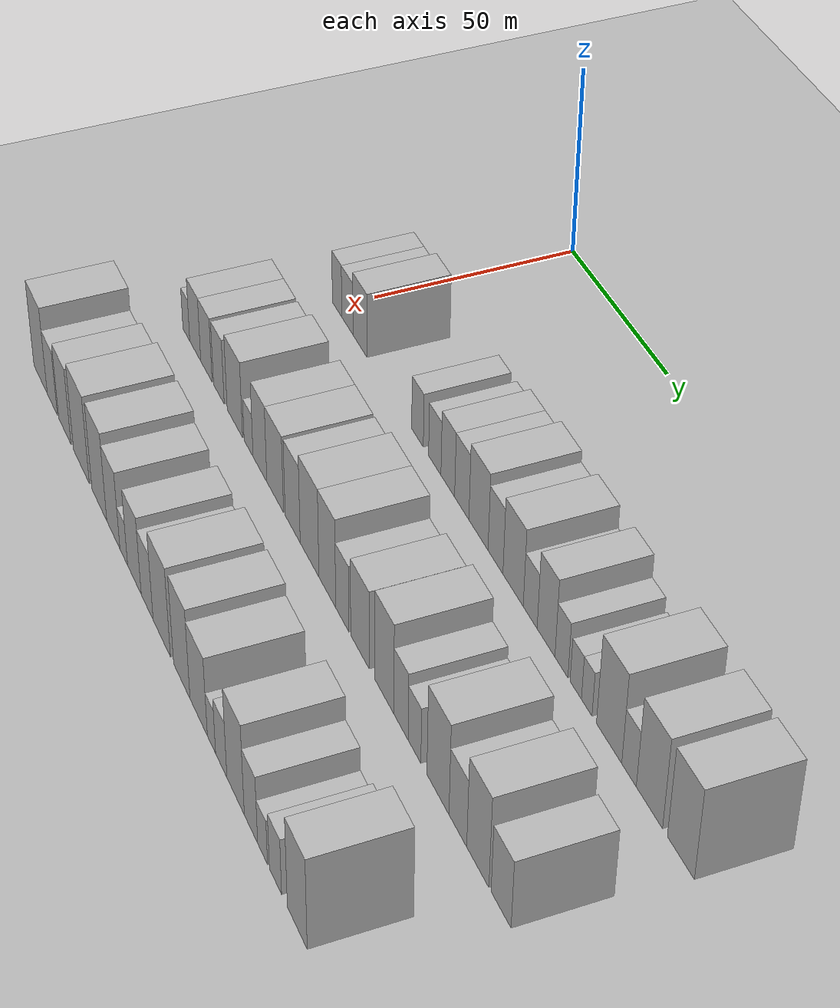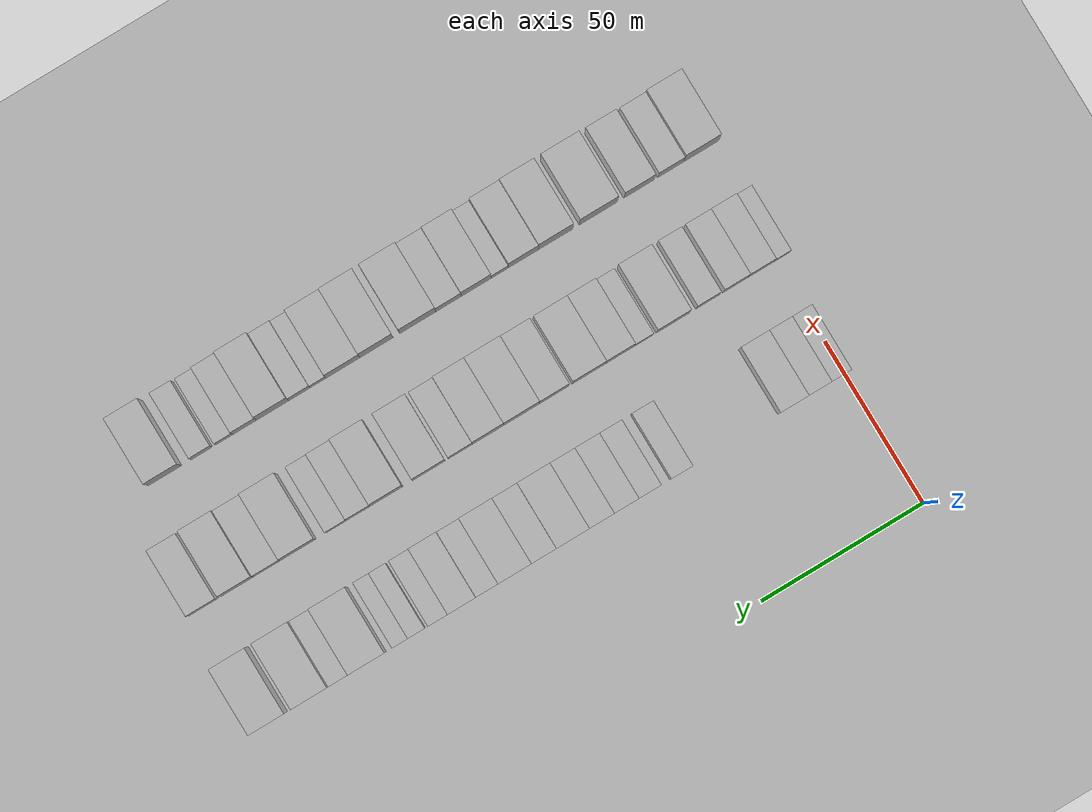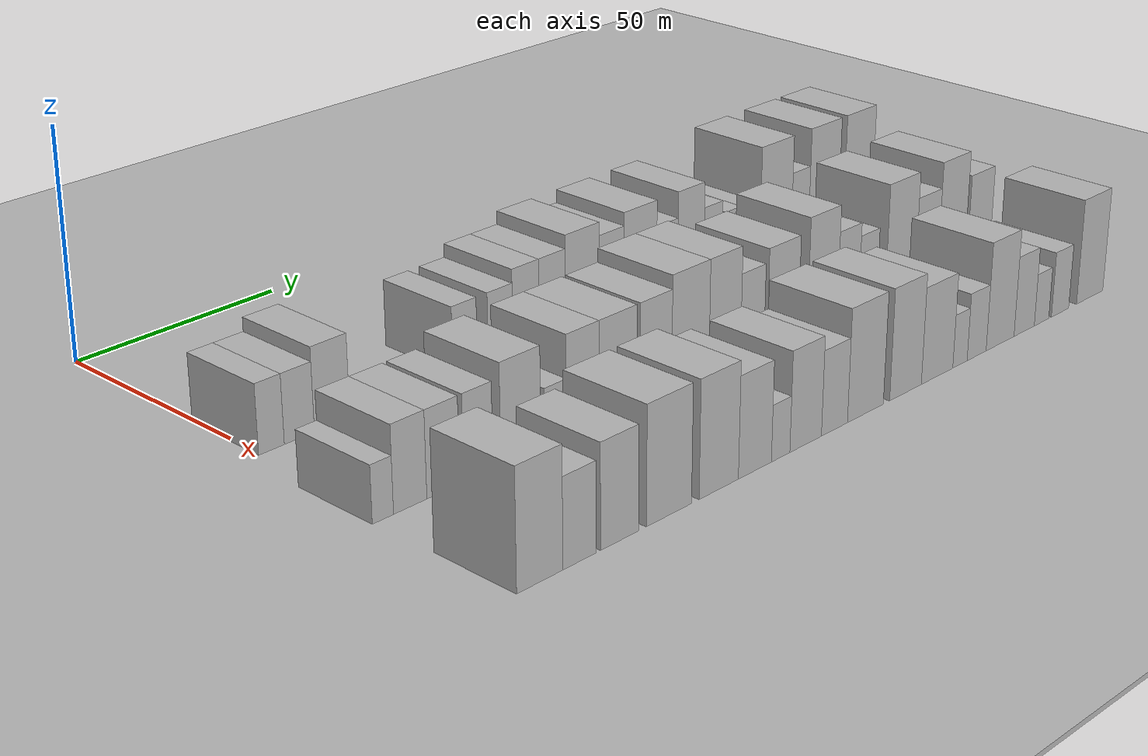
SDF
<sdf version="1.6">
 <world name="default">
  <include><name>ground_plane_1</name><uri>model://HANNAS_ground_plane</uri></include>
  <include>
   <name>ground_plane_2</name>
   <uri>model://HANNAS_ground_plane</uri>
   <pose>100 0 0  0 0 0</pose>
  </include>
  <model name="building_41">
   <static>1</static>
   <pose>50.0000 1.7427 0 0.000000 0.000000 0.000000</pose>
   <link name="link">
    <pose>0 0 7.50 0 0 0</pose>
    <collision name="collision"><geometry><box><size>20.0000 6.0325 15.0000</size></box></geometry></collision>
    <visual name="visual">
     <cast_shadows>0</cast_shadows>
     <geometry><box><size>20.0000 6.0325 15.0000</size></box></geometry>
     <material>
      <script>
       <uri>model://HANNAS_wall/materials/scripts</uri>
       <uri>model://HANNAS_wall/materials/textures</uri>
       <name>vrc/HANNAS_wall</name>
      </script>
     </material>
    </visual>
   </link>
  </model>
  <model name="building_42">
   <static>1</static>
   <pose>50.0000 8.3650 0 0.000000 0.000000 0.000000</pose>
   <link name="link">
    <pose>0 0 7.50 0 0 0</pose>
    <collision name="collision"><geometry><box><size>20.0000 7.2120 15.0000</size></box></geometry></collision>
    <visual name="visual">
     <cast_shadows>0</cast_shadows>
     <geometry><box><size>20.0000 7.2120 15.0000</size></box></geometry>
     <material>
      <script>
       <uri>model://HANNAS_wall/materials/scripts</uri>
       <uri>model://HANNAS_wall/materials/textures</uri>
       <name>vrc/HANNAS_wall</name>
      </script>
     </material>
    </visual>
   </link>
  </model>
  <model name="building_43">
   <static>1</static>
   <pose>50.0000 16.3239 0 0.000000 0.000000 0.000000</pose>
   <link name="link">
    <pose>0 0 9.00 0 0 0</pose>
    <collision name="collision"><geometry><box><size>20.0000 8.7058 18.0000</size></box></geometry></collision>
    <visual name="visual">
     <cast_shadows>0</cast_shadows>
     <geometry><box><size>20.0000 8.7058 18.0000</size></box></geometry>
     <material>
      <script>
       <uri>model://HANNAS_wall/materials/scripts</uri>
       <uri>model://HANNAS_wall/materials/textures</uri>
       <name>vrc/HANNAS_wall</name>
      </script>
     </material>
    </visual>
   </link>
  </model>
  <model name="building_44">
   <static>1</static>
   <pose>50.0000 50.6736 0 0.000000 0.000000 0.000000</pose>
   <link name="link">
    <pose>0 0 7.50 0 0 0</pose>
    <collision name="collision"><geometry><box><size>20.0000 6.6645 15.0000</size></box></geometry></collision>
    <visual name="visual">
     <cast_shadows>0</cast_shadows>
     <geometry><box><size>20.0000 6.6645 15.0000</size></box></geometry>
     <material>
      <script>
       <uri>model://HANNAS_wall/materials/scripts</uri>
       <uri>model://HANNAS_wall/materials/textures</uri>
       <name>vrc/HANNAS_wall</name>
      </script>
     </material>
    </visual>
   </link>
  </model>
  <model name="building_45">
   <static>1</static>
   <pose>50.0000 60.4581 0 0.000000 0.000000 0.000000</pose>
   <link name="link">
    <pose>0 0 7.50 0 0 0</pose>
    <collision name="collision"><geometry><box><size>20.0000 6.9047 15.0000</size></box></geometry></collision>
    <visual name="visual">
     <cast_shadows>0</cast_shadows>
     <geometry><box><size>20.0000 6.9047 15.0000</size></box></geometry>
     <material>
      <script>
       <uri>model://HANNAS_wall/materials/scripts</uri>
       <uri>model://HANNAS_wall/materials/textures</uri>
       <name>vrc/HANNAS_wall</name>
      </script>
     </material>
    </visual>
   </link>
  </model>
  <model name="building_46">
   <static>1</static>
   <pose>50.0000 67.6702 0 0.000000 0.000000 0.000000</pose>
   <link name="link">
    <pose>0 0 9.00 0 0 0</pose>
    <collision name="collision"><geometry><box><size>20.0000 7.5195 18.0000</size></box></geometry></collision>
    <visual name="visual">
     <cast_shadows>0</cast_shadows>
     <geometry><box><size>20.0000 7.5195 18.0000</size></box></geometry>
     <material>
      <script>
       <uri>model://HANNAS_wall/materials/scripts</uri>
       <uri>model://HANNAS_wall/materials/textures</uri>
       <name>vrc/HANNAS_wall</name>
      </script>
     </material>
    </visual>
   </link>
  </model>
  <model name="building_47">
   <static>1</static>
   <pose>50.0000 75.2635 0 0.000000 0.000000 0.000000</pose>
   <link name="link">
    <pose>0 0 9.00 0 0 0</pose>
    <collision name="collision"><geometry><box><size>20.0000 7.6672 18.0000</size></box></geometry></collision>
    <visual name="visual">
     <cast_shadows>0</cast_shadows>
     <geometry><box><size>20.0000 7.6672 18.0000</size></box></geometry>
     <material>
      <script>
       <uri>model://HANNAS_wall/materials/scripts</uri>
       <uri>model://HANNAS_wall/materials/textures</uri>
       <name>vrc/HANNAS_wall</name>
      </script>
     </material>
    </visual>
   </link>
  </model>
  <model name="building_48">
   <static>1</static>
   <pose>50.0000 84.1313 0 0.000000 0.000000 0.000000</pose>
   <link name="link">
    <pose>0 0 10.50 0 0 0</pose>
    <collision name="collision"><geometry><box><size>20.0000 10.0684 21.0000</size></box></geometry></collision>
    <visual name="visual">
     <cast_shadows>0</cast_shadows>
     <geometry><box><size>20.0000 10.0684 21.0000</size></box></geometry>
     <material>
      <script>
       <uri>model://HANNAS_wall/materials/scripts</uri>
       <uri>model://HANNAS_wall/materials/textures</uri>
       <name>vrc/HANNAS_wall</name>
      </script>
     </material>
    </visual>
   </link>
  </model>
  <model name="building_49">
   <static>1</static>
   <pose>50.0000 92.9879 0 0.000000 0.000000 0.000000</pose>
   <link name="link">
    <pose>0 0 9.00 0 0 0</pose>
    <collision name="collision"><geometry><box><size>20.0000 7.6447 18.0000</size></box></geometry></collision>
    <visual name="visual">
     <cast_shadows>0</cast_shadows>
     <geometry><box><size>20.0000 7.6447 18.0000</size></box></geometry>
     <material>
      <script>
       <uri>model://HANNAS_wall/materials/scripts</uri>
       <uri>model://HANNAS_wall/materials/textures</uri>
       <name>vrc/HANNAS_wall</name>
      </script>
     </material>
    </visual>
   </link>
  </model>
  <model name="building_50">
   <static>1</static>
   <pose>50.0000 101.9029 0 0.000000 0.000000 0.000000</pose>
   <link name="link">
    <pose>0 0 10.50 0 0 0</pose>
    <collision name="collision"><geometry><box><size>20.0000 10.1852 21.0000</size></box></geometry></collision>
    <visual name="visual">
     <cast_shadows>0</cast_shadows>
     <geometry><box><size>20.0000 10.1852 21.0000</size></box></geometry>
     <material>
      <script>
       <uri>model://HANNAS_wall/materials/scripts</uri>
       <uri>model://HANNAS_wall/materials/textures</uri>
       <name>vrc/HANNAS_wall</name>
      </script>
     </material>
    </visual>
   </link>
  </model>
  <model name="building_51">
   <static>1</static>
   <pose>50.0000 110.4043 0 0.000000 0.000000 0.000000</pose>
   <link name="link">
    <pose>0 0 7.50 0 0 0</pose>
    <collision name="collision"><geometry><box><size>20.0000 6.8177 15.0000</size></box></geometry></collision>
    <visual name="visual">
     <cast_shadows>0</cast_shadows>
     <geometry><box><size>20.0000 6.8177 15.0000</size></box></geometry>
     <material>
      <script>
       <uri>model://HANNAS_wall/materials/scripts</uri>
       <uri>model://HANNAS_wall/materials/textures</uri>
       <name>vrc/HANNAS_wall</name>
      </script>
     </material>
    </visual>
   </link>
  </model>
  <model name="building_52">
   <static>1</static>
   <pose>50.0000 118.0858 0 0.000000 0.000000 0.000000</pose>
   <link name="link">
    <pose>0 0 10.50 0 0 0</pose>
    <collision name="collision"><geometry><box><size>20.0000 8.5454 21.0000</size></box></geometry></collision>
    <visual name="visual">
     <cast_shadows>0</cast_shadows>
     <geometry><box><size>20.0000 8.5454 21.0000</size></box></geometry>
     <material>
      <script>
       <uri>model://HANNAS_wall/materials/scripts</uri>
       <uri>model://HANNAS_wall/materials/textures</uri>
       <name>vrc/HANNAS_wall</name>
      </script>
     </material>
    </visual>
   </link>
  </model>
  <model name="building_53">
   <static>1</static>
   <pose>50.0000 125.4102 0 0.000000 0.000000 0.000000</pose>
   <link name="link">
    <pose>0 0 7.50 0 0 0</pose>
    <collision name="collision"><geometry><box><size>20.0000 6.1034 15.0000</size></box></geometry></collision>
    <visual name="visual">
     <cast_shadows>0</cast_shadows>
     <geometry><box><size>20.0000 6.1034 15.0000</size></box></geometry>
     <material>
      <script>
       <uri>model://HANNAS_wall/materials/scripts</uri>
       <uri>model://HANNAS_wall/materials/textures</uri>
       <name>vrc/HANNAS_wall</name>
      </script>
     </material>
    </visual>
   </link>
  </model>
  <model name="building_54">
   <static>1</static>
   <pose>50.0000 132.0772 0 0.000000 0.000000 0.000000</pose>
   <link name="link">
    <pose>0 0 6.00 0 0 0</pose>
    <collision name="collision"><geometry><box><size>20.0000 5.2305 12.0000</size></box></geometry></collision>
    <visual name="visual">
     <cast_shadows>0</cast_shadows>
     <geometry><box><size>20.0000 5.2305 12.0000</size></box></geometry>
     <material>
      <script>
       <uri>model://HANNAS_wall/materials/scripts</uri>
       <uri>model://HANNAS_wall/materials/textures</uri>
       <name>vrc/HANNAS_wall</name>
      </script>
     </material>
    </visual>
   </link>
  </model>
  <model name="building_55">
   <static>1</static>
   <pose>50.0000 137.1034 0 0.000000 0.000000 0.000000</pose>
   <link name="link">
    <pose>0 0 6.00 0 0 0</pose>
    <collision name="collision"><geometry><box><size>20.0000 4.8220 12.0000</size></box></geometry></collision>
    <visual name="visual">
     <cast_shadows>0</cast_shadows>
     <geometry><box><size>20.0000 4.8220 12.0000</size></box></geometry>
     <material>
      <script>
       <uri>model://HANNAS_wall/materials/scripts</uri>
       <uri>model://HANNAS_wall/materials/textures</uri>
       <name>vrc/HANNAS_wall</name>
      </script>
     </material>
    </visual>
   </link>
  </model>
  <model name="building_56">
   <static>1</static>
   <pose>50.0000 147.1012 0 0.000000 0.000000 0.000000</pose>
   <link name="link">
    <pose>0 0 12.00 0 0 0</pose>
    <collision name="collision"><geometry><box><size>20.0000 11.1736 24.0000</size></box></geometry></collision>
    <visual name="visual">
     <cast_shadows>0</cast_shadows>
     <geometry><box><size>20.0000 11.1736 24.0000</size></box></geometry>
     <material>
      <script>
       <uri>model://HANNAS_wall/materials/scripts</uri>
       <uri>model://HANNAS_wall/materials/textures</uri>
       <name>vrc/HANNAS_wall</name>
      </script>
     </material>
    </visual>
   </link>
  </model>
  <model name="building_57">
   <static>1</static>
   <pose>50.0000 155.8276 0 0.000000 0.000000 0.000000</pose>
   <link name="link">
    <pose>0 0 7.50 0 0 0</pose>
    <collision name="collision"><geometry><box><size>20.0000 6.2790 15.0000</size></box></geometry></collision>
    <visual name="visual">
     <cast_shadows>0</cast_shadows>
     <geometry><box><size>20.0000 6.2790 15.0000</size></box></geometry>
     <material>
      <script>
       <uri>model://HANNAS_wall/materials/scripts</uri>
       <uri>model://HANNAS_wall/materials/textures</uri>
       <name>vrc/HANNAS_wall</name>
      </script>
     </material>
    </visual>
   </link>
  </model>
  <model name="building_58">
   <static>1</static>
   <pose>50.0000 164.4789 0 0.000000 0.000000 0.000000</pose>
   <link name="link">
    <pose>0 0 12.00 0 0 0</pose>
    <collision name="collision"><geometry><box><size>20.0000 11.0237 24.0000</size></box></geometry></collision>
    <visual name="visual">
     <cast_shadows>0</cast_shadows>
     <geometry><box><size>20.0000 11.0237 24.0000</size></box></geometry>
     <material>
      <script>
       <uri>model://HANNAS_wall/materials/scripts</uri>
       <uri>model://HANNAS_wall/materials/textures</uri>
       <name>vrc/HANNAS_wall</name>
      </script>
     </material>
    </visual>
   </link>
  </model>
  <model name="building_59">
   <static>1</static>
   <pose>50.0000 177.4538 0 0.000000 0.000000 0.000000</pose>
   <link name="link">
    <pose>0 0 12.00 0 0 0</pose>
    <collision name="collision"><geometry><box><size>20.0000 10.9261 24.0000</size></box></geometry></collision>
    <visual name="visual">
     <cast_shadows>0</cast_shadows>
     <geometry><box><size>20.0000 10.9261 24.0000</size></box></geometry>
     <material>
      <script>
       <uri>model://HANNAS_wall/materials/scripts</uri>
       <uri>model://HANNAS_wall/materials/textures</uri>
       <name>vrc/HANNAS_wall</name>
      </script>
     </material>
    </visual>
   </link>
  </model>
  <model name="building_119">
   <static>1</static>
   <pose>85.0000 -1.7467 0 0.000000 0.000000 0.000000</pose>
   <link name="link">
    <pose>0 0 6.00 0 0 0</pose>
    <collision name="collision"><geometry><box><size>20.0000 4.8952 12.0000</size></box></geometry></collision>
    <visual name="visual">
     <cast_shadows>0</cast_shadows>
     <geometry><box><size>20.0000 4.8952 12.0000</size></box></geometry>
     <material>
      <script>
       <uri>model://HANNAS_wall/materials/scripts</uri>
       <uri>model://HANNAS_wall/materials/textures</uri>
       <name>vrc/HANNAS_wall</name>
      </script>
     </material>
    </visual>
   </link>
  </model>
  <model name="building_120">
   <static>1</static>
   <pose>85.0000 4.6228 0 0.000000 0.000000 0.000000</pose>
   <link name="link">
    <pose>0 0 9.00 0 0 0</pose>
    <collision name="collision"><geometry><box><size>20.0000 7.8437 18.0000</size></box></geometry></collision>
    <visual name="visual">
     <cast_shadows>0</cast_shadows>
     <geometry><box><size>20.0000 7.8437 18.0000</size></box></geometry>
     <material>
      <script>
       <uri>model://HANNAS_wall/materials/scripts</uri>
       <uri>model://HANNAS_wall/materials/textures</uri>
       <name>vrc/HANNAS_wall</name>
      </script>
     </material>
    </visual>
   </link>
  </model>
  <model name="building_121">
   <static>1</static>
   <pose>85.0000 12.5078 0 0.000000 0.000000 0.000000</pose>
   <link name="link">
    <pose>0 0 9.00 0 0 0</pose>
    <collision name="collision"><geometry><box><size>20.0000 7.9263 18.0000</size></box></geometry></collision>
    <visual name="visual">
     <cast_shadows>0</cast_shadows>
     <geometry><box><size>20.0000 7.9263 18.0000</size></box></geometry>
     <material>
      <script>
       <uri>model://HANNAS_wall/materials/scripts</uri>
       <uri>model://HANNAS_wall/materials/textures</uri>
       <name>vrc/HANNAS_wall</name>
      </script>
     </material>
    </visual>
   </link>
  </model>
  <model name="building_122">
   <static>1</static>
   <pose>85.0000 21.1049 0 0.000000 0.000000 0.000000</pose>
   <link name="link">
    <pose>0 0 9.00 0 0 0</pose>
    <collision name="collision"><geometry><box><size>20.0000 7.2680 18.0000</size></box></geometry></collision>
    <visual name="visual">
     <cast_shadows>0</cast_shadows>
     <geometry><box><size>20.0000 7.2680 18.0000</size></box></geometry>
     <material>
      <script>
       <uri>model://HANNAS_wall/materials/scripts</uri>
       <uri>model://HANNAS_wall/materials/textures</uri>
       <name>vrc/HANNAS_wall</name>
      </script>
     </material>
    </visual>
   </link>
  </model>
  <model name="building_123">
   <static>1</static>
   <pose>85.0000 31.8731 0 0.000000 0.000000 0.000000</pose>
   <link name="link">
    <pose>0 0 10.50 0 0 0</pose>
    <collision name="collision"><geometry><box><size>20.0000 10.2685 21.0000</size></box></geometry></collision>
    <visual name="visual">
     <cast_shadows>0</cast_shadows>
     <geometry><box><size>20.0000 10.2685 21.0000</size></box></geometry>
     <material>
      <script>
       <uri>model://HANNAS_wall/materials/scripts</uri>
       <uri>model://HANNAS_wall/materials/textures</uri>
       <name>vrc/HANNAS_wall</name>
      </script>
     </material>
    </visual>
   </link>
  </model>
  <model name="building_124">
   <static>1</static>
   <pose>85.0000 40.9102 0 0.000000 0.000000 0.000000</pose>
   <link name="link">
    <pose>0 0 6.00 0 0 0</pose>
    <collision name="collision"><geometry><box><size>20.0000 5.8057 12.0000</size></box></geometry></collision>
    <visual name="visual">
     <cast_shadows>0</cast_shadows>
     <geometry><box><size>20.0000 5.8057 12.0000</size></box></geometry>
     <material>
      <script>
       <uri>model://HANNAS_wall/materials/scripts</uri>
       <uri>model://HANNAS_wall/materials/textures</uri>
       <name>vrc/HANNAS_wall</name>
      </script>
     </material>
    </visual>
   </link>
  </model>
  <model name="building_125">
   <static>1</static>
   <pose>85.0000 48.2095 0 0.000000 0.000000 0.000000</pose>
   <link name="link">
    <pose>0 0 10.50 0 0 0</pose>
    <collision name="collision"><geometry><box><size>20.0000 8.7928 21.0000</size></box></geometry></collision>
    <visual name="visual">
     <cast_shadows>0</cast_shadows>
     <geometry><box><size>20.0000 8.7928 21.0000</size></box></geometry>
     <material>
      <script>
       <uri>model://HANNAS_wall/materials/scripts</uri>
       <uri>model://HANNAS_wall/materials/textures</uri>
       <name>vrc/HANNAS_wall</name>
      </script>
     </material>
    </visual>
   </link>
  </model>
  <model name="building_126">
   <static>1</static>
   <pose>85.0000 57.8054 0 0.000000 0.000000 0.000000</pose>
   <link name="link">
    <pose>0 0 10.50 0 0 0</pose>
    <collision name="collision"><geometry><box><size>20.0000 10.3990 21.0000</size></box></geometry></collision>
    <visual name="visual">
     <cast_shadows>0</cast_shadows>
     <geometry><box><size>20.0000 10.3990 21.0000</size></box></geometry>
     <material>
      <script>
       <uri>model://HANNAS_wall/materials/scripts</uri>
       <uri>model://HANNAS_wall/materials/textures</uri>
       <name>vrc/HANNAS_wall</name>
      </script>
     </material>
    </visual>
   </link>
  </model>
  <model name="building_127">
   <static>1</static>
   <pose>85.0000 68.5514 0 0.000000 0.000000 0.000000</pose>
   <link name="link">
    <pose>0 0 10.50 0 0 0</pose>
    <collision name="collision"><geometry><box><size>20.0000 9.0930 21.0000</size></box></geometry></collision>
    <visual name="visual">
     <cast_shadows>0</cast_shadows>
     <geometry><box><size>20.0000 9.0930 21.0000</size></box></geometry>
     <material>
      <script>
       <uri>model://HANNAS_wall/materials/scripts</uri>
       <uri>model://HANNAS_wall/materials/textures</uri>
       <name>vrc/HANNAS_wall</name>
      </script>
     </material>
    </visual>
   </link>
  </model>
  <model name="building_128">
   <static>1</static>
   <pose>85.0000 78.6218 0 0.000000 0.000000 0.000000</pose>
   <link name="link">
    <pose>0 0 12.00 0 0 0</pose>
    <collision name="collision"><geometry><box><size>20.0000 11.0478 24.0000</size></box></geometry></collision>
    <visual name="visual">
     <cast_shadows>0</cast_shadows>
     <geometry><box><size>20.0000 11.0478 24.0000</size></box></geometry>
     <material>
      <script>
       <uri>model://HANNAS_wall/materials/scripts</uri>
       <uri>model://HANNAS_wall/materials/textures</uri>
       <name>vrc/HANNAS_wall</name>
      </script>
     </material>
    </visual>
   </link>
  </model>
  <model name="building_129">
   <static>1</static>
   <pose>85.0000 88.9716 0 0.000000 0.000000 0.000000</pose>
   <link name="link">
    <pose>0 0 12.00 0 0 0</pose>
    <collision name="collision"><geometry><box><size>20.0000 9.6520 24.0000</size></box></geometry></collision>
    <visual name="visual">
     <cast_shadows>0</cast_shadows>
     <geometry><box><size>20.0000 9.6520 24.0000</size></box></geometry>
     <material>
      <script>
       <uri>model://HANNAS_wall/materials/scripts</uri>
       <uri>model://HANNAS_wall/materials/textures</uri>
       <name>vrc/HANNAS_wall</name>
      </script>
     </material>
    </visual>
   </link>
  </model>
  <model name="building_130">
   <static>1</static>
   <pose>85.0000 97.4891 0 0.000000 0.000000 0.000000</pose>
   <link name="link">
    <pose>0 0 9.00 0 0 0</pose>
    <collision name="collision"><geometry><box><size>20.0000 7.3828 18.0000</size></box></geometry></collision>
    <visual name="visual">
     <cast_shadows>0</cast_shadows>
     <geometry><box><size>20.0000 7.3828 18.0000</size></box></geometry>
     <material>
      <script>
       <uri>model://HANNAS_wall/materials/scripts</uri>
       <uri>model://HANNAS_wall/materials/textures</uri>
       <name>vrc/HANNAS_wall</name>
      </script>
     </material>
    </visual>
   </link>
  </model>
  <model name="building_131">
   <static>1</static>
   <pose>85.0000 107.1937 0 0.000000 0.000000 0.000000</pose>
   <link name="link">
    <pose>0 0 10.50 0 0 0</pose>
    <collision name="collision"><geometry><box><size>20.0000 10.0264 21.0000</size></box></geometry></collision>
    <visual name="visual">
     <cast_shadows>0</cast_shadows>
     <geometry><box><size>20.0000 10.0264 21.0000</size></box></geometry>
     <material>
      <script>
       <uri>model://HANNAS_wall/materials/scripts</uri>
       <uri>model://HANNAS_wall/materials/textures</uri>
       <name>vrc/HANNAS_wall</name>
      </script>
     </material>
    </visual>
   </link>
  </model>
  <model name="building_132">
   <static>1</static>
   <pose>85.0000 120.2014 0 0.000000 0.000000 0.000000</pose>
   <link name="link">
    <pose>0 0 12.00 0 0 0</pose>
    <collision name="collision"><geometry><box><size>20.0000 9.9890 24.0000</size></box></geometry></collision>
    <visual name="visual">
     <cast_shadows>0</cast_shadows>
     <geometry><box><size>20.0000 9.9890 24.0000</size></box></geometry>
     <material>
      <script>
       <uri>model://HANNAS_wall/materials/scripts</uri>
       <uri>model://HANNAS_wall/materials/textures</uri>
       <name>vrc/HANNAS_wall</name>
      </script>
     </material>
    </visual>
   </link>
  </model>
  <model name="building_133">
   <static>1</static>
   <pose>85.0000 128.8684 0 0.000000 0.000000 0.000000</pose>
   <link name="link">
    <pose>0 0 9.00 0 0 0</pose>
    <collision name="collision"><geometry><box><size>20.0000 7.3451 18.0000</size></box></geometry></collision>
    <visual name="visual">
     <cast_shadows>0</cast_shadows>
     <geometry><box><size>20.0000 7.3451 18.0000</size></box></geometry>
     <material>
      <script>
       <uri>model://HANNAS_wall/materials/scripts</uri>
       <uri>model://HANNAS_wall/materials/textures</uri>
       <name>vrc/HANNAS_wall</name>
      </script>
     </material>
    </visual>
   </link>
  </model>
  <model name="building_134">
   <static>1</static>
   <pose>85.0000 135.7424 0 0.000000 0.000000 0.000000</pose>
   <link name="link">
    <pose>0 0 7.50 0 0 0</pose>
    <collision name="collision"><geometry><box><size>20.0000 6.4028 15.0000</size></box></geometry></collision>
    <visual name="visual">
     <cast_shadows>0</cast_shadows>
     <geometry><box><size>20.0000 6.4028 15.0000</size></box></geometry>
     <material>
      <script>
       <uri>model://HANNAS_wall/materials/scripts</uri>
       <uri>model://HANNAS_wall/materials/textures</uri>
       <name>vrc/HANNAS_wall</name>
      </script>
     </material>
    </visual>
   </link>
  </model>
  <model name="building_135">
   <static>1</static>
   <pose>85.0000 147.3098 0 0.000000 0.000000 0.000000</pose>
   <link name="link">
    <pose>0 0 12.00 0 0 0</pose>
    <collision name="collision"><geometry><box><size>20.0000 10.7319 24.0000</size></box></geometry></collision>
    <visual name="visual">
     <cast_shadows>0</cast_shadows>
     <geometry><box><size>20.0000 10.7319 24.0000</size></box></geometry>
     <material>
      <script>
       <uri>model://HANNAS_wall/materials/scripts</uri>
       <uri>model://HANNAS_wall/materials/textures</uri>
       <name>vrc/HANNAS_wall</name>
      </script>
     </material>
    </visual>
   </link>
  </model>
  <model name="building_136">
   <static>1</static>
   <pose>85.0000 156.8674 0 0.000000 0.000000 0.000000</pose>
   <link name="link">
    <pose>0 0 9.00 0 0 0</pose>
    <collision name="collision"><geometry><box><size>20.0000 8.3833 18.0000</size></box></geometry></collision>
    <visual name="visual">
     <cast_shadows>0</cast_shadows>
     <geometry><box><size>20.0000 8.3833 18.0000</size></box></geometry>
     <material>
      <script>
       <uri>model://HANNAS_wall/materials/scripts</uri>
       <uri>model://HANNAS_wall/materials/textures</uri>
       <name>vrc/HANNAS_wall</name>
      </script>
     </material>
    </visual>
   </link>
  </model>
  <model name="building_137">
   <static>1</static>
   <pose>85.0000 166.1545 0 0.000000 0.000000 0.000000</pose>
   <link name="link">
    <pose>0 0 12.00 0 0 0</pose>
    <collision name="collision"><geometry><box><size>20.0000 10.1909 24.0000</size></box></geometry></collision>
    <visual name="visual">
     <cast_shadows>0</cast_shadows>
     <geometry><box><size>20.0000 10.1909 24.0000</size></box></geometry>
     <material>
      <script>
       <uri>model://HANNAS_wall/materials/scripts</uri>
       <uri>model://HANNAS_wall/materials/textures</uri>
       <name>vrc/HANNAS_wall</name>
      </script>
     </material>
    </visual>
   </link>
  </model>
  <model name="building_138">
   <static>1</static>
   <pose>85.0000 176.7057 0 0.000000 0.000000 0.000000</pose>
   <link name="link">
    <pose>0 0 9.00 0 0 0</pose>
    <collision name="collision"><geometry><box><size>20.0000 8.9116 18.0000</size></box></geometry></collision>
    <visual name="visual">
     <cast_shadows>0</cast_shadows>
     <geometry><box><size>20.0000 8.9116 18.0000</size></box></geometry>
     <material>
      <script>
       <uri>model://HANNAS_wall/materials/scripts</uri>
       <uri>model://HANNAS_wall/materials/textures</uri>
       <name>vrc/HANNAS_wall</name>
      </script>
     </material>
    </visual>
   </link>
  </model>
  <model name="building_193">
   <static>1</static>
   <pose>120.0000 1.8938 0 0.000000 0.000000 0.000000</pose>
   <link name="link">
    <pose>0 0 12.00 0 0 0</pose>
    <collision name="collision"><geometry><box><size>20.0000 10.7951 24.0000</size></box></geometry></collision>
    <visual name="visual">
     <cast_shadows>0</cast_shadows>
     <geometry><box><size>20.0000 10.7951 24.0000</size></box></geometry>
     <material>
      <script>
       <uri>model://HANNAS_wall/materials/scripts</uri>
       <uri>model://HANNAS_wall/materials/textures</uri>
       <name>vrc/HANNAS_wall</name>
      </script>
     </material>
    </visual>
   </link>
  </model>
  <model name="building_194">
   <static>1</static>
   <pose>120.0000 11.3178 0 0.000000 0.000000 0.000000</pose>
   <link name="link">
    <pose>0 0 9.00 0 0 0</pose>
    <collision name="collision"><geometry><box><size>20.0000 8.0530 18.0000</size></box></geometry></collision>
    <visual name="visual">
     <cast_shadows>0</cast_shadows>
     <geometry><box><size>20.0000 8.0530 18.0000</size></box></geometry>
     <material>
      <script>
       <uri>model://HANNAS_wall/materials/scripts</uri>
       <uri>model://HANNAS_wall/materials/textures</uri>
       <name>vrc/HANNAS_wall</name>
      </script>
     </material>
    </visual>
   </link>
  </model>
  <model name="building_195">
   <static>1</static>
   <pose>120.0000 21.0740 0 0.000000 0.000000 0.000000</pose>
   <link name="link">
    <pose>0 0 10.50 0 0 0</pose>
    <collision name="collision"><geometry><box><size>20.0000 9.4592 21.0000</size></box></geometry></collision>
    <visual name="visual">
     <cast_shadows>0</cast_shadows>
     <geometry><box><size>20.0000 9.4592 21.0000</size></box></geometry>
     <material>
      <script>
       <uri>model://HANNAS_wall/materials/scripts</uri>
       <uri>model://HANNAS_wall/materials/textures</uri>
       <name>vrc/HANNAS_wall</name>
      </script>
     </material>
    </visual>
   </link>
  </model>
  <model name="building_196">
   <static>1</static>
   <pose>120.0000 33.6798 0 0.000000 0.000000 0.000000</pose>
   <link name="link">
    <pose>0 0 12.00 0 0 0</pose>
    <collision name="collision"><geometry><box><size>20.0000 11.7524 24.0000</size></box></geometry></collision>
    <visual name="visual">
     <cast_shadows>0</cast_shadows>
     <geometry><box><size>20.0000 11.7524 24.0000</size></box></geometry>
     <material>
      <script>
       <uri>model://HANNAS_wall/materials/scripts</uri>
       <uri>model://HANNAS_wall/materials/textures</uri>
       <name>vrc/HANNAS_wall</name>
      </script>
     </material>
    </visual>
   </link>
  </model>
  <model name="building_197">
   <static>1</static>
   <pose>120.0000 46.8922 0 0.000000 0.000000 0.000000</pose>
   <link name="link">
    <pose>0 0 12.00 0 0 0</pose>
    <collision name="collision"><geometry><box><size>20.0000 10.6726 24.0000</size></box></geometry></collision>
    <visual name="visual">
     <cast_shadows>0</cast_shadows>
     <geometry><box><size>20.0000 10.6726 24.0000</size></box></geometry>
     <material>
      <script>
       <uri>model://HANNAS_wall/materials/scripts</uri>
       <uri>model://HANNAS_wall/materials/textures</uri>
       <name>vrc/HANNAS_wall</name>
      </script>
     </material>
    </visual>
   </link>
  </model>
  <model name="building_198">
   <static>1</static>
   <pose>120.0000 56.8577 0 0.000000 0.000000 0.000000</pose>
   <link name="link">
    <pose>0 0 10.50 0 0 0</pose>
    <collision name="collision"><geometry><box><size>20.0000 9.2584 21.0000</size></box></geometry></collision>
    <visual name="visual">
     <cast_shadows>0</cast_shadows>
     <geometry><box><size>20.0000 9.2584 21.0000</size></box></geometry>
     <material>
      <script>
       <uri>model://HANNAS_wall/materials/scripts</uri>
       <uri>model://HANNAS_wall/materials/textures</uri>
       <name>vrc/HANNAS_wall</name>
      </script>
     </material>
    </visual>
   </link>
  </model>
  <model name="building_199">
   <static>1</static>
   <pose>120.0000 64.1374 0 0.000000 0.000000 0.000000</pose>
   <link name="link">
    <pose>0 0 6.00 0 0 0</pose>
    <collision name="collision"><geometry><box><size>20.0000 5.3009 12.0000</size></box></geometry></collision>
    <visual name="visual">
     <cast_shadows>0</cast_shadows>
     <geometry><box><size>20.0000 5.3009 12.0000</size></box></geometry>
     <material>
      <script>
       <uri>model://HANNAS_wall/materials/scripts</uri>
       <uri>model://HANNAS_wall/materials/textures</uri>
       <name>vrc/HANNAS_wall</name>
      </script>
     </material>
    </visual>
   </link>
  </model>
  <model name="building_200">
   <static>1</static>
   <pose>120.0000 71.4222 0 0.000000 0.000000 0.000000</pose>
   <link name="link">
    <pose>0 0 10.50 0 0 0</pose>
    <collision name="collision"><geometry><box><size>20.0000 9.2686 21.0000</size></box></geometry></collision>
    <visual name="visual">
     <cast_shadows>0</cast_shadows>
     <geometry><box><size>20.0000 9.2686 21.0000</size></box></geometry>
     <material>
      <script>
       <uri>model://HANNAS_wall/materials/scripts</uri>
       <uri>model://HANNAS_wall/materials/textures</uri>
       <name>vrc/HANNAS_wall</name>
      </script>
     </material>
    </visual>
   </link>
  </model>
  <model name="building_201">
   <static>1</static>
   <pose>120.0000 79.9820 0 0.000000 0.000000 0.000000</pose>
   <link name="link">
    <pose>0 0 9.00 0 0 0</pose>
    <collision name="collision"><geometry><box><size>20.0000 7.8511 18.0000</size></box></geometry></collision>
    <visual name="visual">
     <cast_shadows>0</cast_shadows>
     <geometry><box><size>20.0000 7.8511 18.0000</size></box></geometry>
     <material>
      <script>
       <uri>model://HANNAS_wall/materials/scripts</uri>
       <uri>model://HANNAS_wall/materials/textures</uri>
       <name>vrc/HANNAS_wall</name>
      </script>
     </material>
    </visual>
   </link>
  </model>
  <model name="building_202">
   <static>1</static>
   <pose>120.0000 89.4826 0 0.000000 0.000000 0.000000</pose>
   <link name="link">
    <pose>0 0 12.00 0 0 0</pose>
    <collision name="collision"><geometry><box><size>20.0000 11.1500 24.0000</size></box></geometry></collision>
    <visual name="visual">
     <cast_shadows>0</cast_shadows>
     <geometry><box><size>20.0000 11.1500 24.0000</size></box></geometry>
     <material>
      <script>
       <uri>model://HANNAS_wall/materials/scripts</uri>
       <uri>model://HANNAS_wall/materials/textures</uri>
       <name>vrc/HANNAS_wall</name>
      </script>
     </material>
    </visual>
   </link>
  </model>
  <model name="building_203">
   <static>1</static>
   <pose>120.0000 102.1749 0 0.000000 0.000000 0.000000</pose>
   <link name="link">
    <pose>0 0 12.00 0 0 0</pose>
    <collision name="collision"><geometry><box><size>20.0000 10.2348 24.0000</size></box></geometry></collision>
    <visual name="visual">
     <cast_shadows>0</cast_shadows>
     <geometry><box><size>20.0000 10.2348 24.0000</size></box></geometry>
     <material>
      <script>
       <uri>model://HANNAS_wall/materials/scripts</uri>
       <uri>model://HANNAS_wall/materials/textures</uri>
       <name>vrc/HANNAS_wall</name>
      </script>
     </material>
    </visual>
   </link>
  </model>
  <model name="building_204">
   <static>1</static>
   <pose>120.0000 112.5306 0 0.000000 0.000000 0.000000</pose>
   <link name="link">
    <pose>0 0 10.50 0 0 0</pose>
    <collision name="collision"><geometry><box><size>20.0000 10.4766 21.0000</size></box></geometry></collision>
    <visual name="visual">
     <cast_shadows>0</cast_shadows>
     <geometry><box><size>20.0000 10.4766 21.0000</size></box></geometry>
     <material>
      <script>
       <uri>model://HANNAS_wall/materials/scripts</uri>
       <uri>model://HANNAS_wall/materials/textures</uri>
       <name>vrc/HANNAS_wall</name>
      </script>
     </material>
    </visual>
   </link>
  </model>
  <model name="building_205">
   <static>1</static>
   <pose>120.0000 120.2087 0 0.000000 0.000000 0.000000</pose>
   <link name="link">
    <pose>0 0 6.00 0 0 0</pose>
    <collision name="collision"><geometry><box><size>20.0000 4.8795 12.0000</size></box></geometry></collision>
    <visual name="visual">
     <cast_shadows>0</cast_shadows>
     <geometry><box><size>20.0000 4.8795 12.0000</size></box></geometry>
     <material>
      <script>
       <uri>model://HANNAS_wall/materials/scripts</uri>
       <uri>model://HANNAS_wall/materials/textures</uri>
       <name>vrc/HANNAS_wall</name>
      </script>
     </material>
    </visual>
   </link>
  </model>
  <model name="building_206">
   <static>1</static>
   <pose>120.0000 125.9349 0 0.000000 0.000000 0.000000</pose>
   <link name="link">
    <pose>0 0 7.50 0 0 0</pose>
    <collision name="collision"><geometry><box><size>20.0000 6.5727 15.0000</size></box></geometry></collision>
    <visual name="visual">
     <cast_shadows>0</cast_shadows>
     <geometry><box><size>20.0000 6.5727 15.0000</size></box></geometry>
     <material>
      <script>
       <uri>model://HANNAS_wall/materials/scripts</uri>
       <uri>model://HANNAS_wall/materials/textures</uri>
       <name>vrc/HANNAS_wall</name>
      </script>
     </material>
    </visual>
   </link>
  </model>
  <model name="building_207">
   <static>1</static>
   <pose>120.0000 134.1677 0 0.000000 0.000000 0.000000</pose>
   <link name="link">
    <pose>0 0 12.00 0 0 0</pose>
    <collision name="collision"><geometry><box><size>20.0000 9.8929 24.0000</size></box></geometry></collision>
    <visual name="visual">
     <cast_shadows>0</cast_shadows>
     <geometry><box><size>20.0000 9.8929 24.0000</size></box></geometry>
     <material>
      <script>
       <uri>model://HANNAS_wall/materials/scripts</uri>
       <uri>model://HANNAS_wall/materials/textures</uri>
       <name>vrc/HANNAS_wall</name>
      </script>
     </material>
    </visual>
   </link>
  </model>
  <model name="building_208">
   <static>1</static>
   <pose>120.0000 142.8019 0 0.000000 0.000000 0.000000</pose>
   <link name="link">
    <pose>0 0 9.00 0 0 0</pose>
    <collision name="collision"><geometry><box><size>20.0000 7.3755 18.0000</size></box></geometry></collision>
    <visual name="visual">
     <cast_shadows>0</cast_shadows>
     <geometry><box><size>20.0000 7.3755 18.0000</size></box></geometry>
     <material>
      <script>
       <uri>model://HANNAS_wall/materials/scripts</uri>
       <uri>model://HANNAS_wall/materials/textures</uri>
       <name>vrc/HANNAS_wall</name>
      </script>
     </material>
    </visual>
   </link>
  </model>
  <model name="building_209">
   <static>1</static>
   <pose>120.0000 149.1625 0 0.000000 0.000000 0.000000</pose>
   <link name="link">
    <pose>0 0 6.00 0 0 0</pose>
    <collision name="collision"><geometry><box><size>20.0000 5.3458 12.0000</size></box></geometry></collision>
    <visual name="visual">
     <cast_shadows>0</cast_shadows>
     <geometry><box><size>20.0000 5.3458 12.0000</size></box></geometry>
     <material>
      <script>
       <uri>model://HANNAS_wall/materials/scripts</uri>
       <uri>model://HANNAS_wall/materials/textures</uri>
       <name>vrc/HANNAS_wall</name>
      </script>
     </material>
    </visual>
   </link>
  </model>
  <model name="building_210">
   <static>1</static>
   <pose>120.0000 156.0858 0 0.000000 0.000000 0.000000</pose>
   <link name="link">
    <pose>0 0 7.50 0 0 0</pose>
    <collision name="collision"><geometry><box><size>20.0000 6.5008 15.0000</size></box></geometry></collision>
    <visual name="visual">
     <cast_shadows>0</cast_shadows>
     <geometry><box><size>20.0000 6.5008 15.0000</size></box></geometry>
     <material>
      <script>
       <uri>model://HANNAS_wall/materials/scripts</uri>
       <uri>model://HANNAS_wall/materials/textures</uri>
       <name>vrc/HANNAS_wall</name>
      </script>
     </material>
    </visual>
   </link>
  </model>
  <model name="building_211">
   <static>1</static>
   <pose>120.0000 167.4445 0 0.000000 0.000000 0.000000</pose>
   <link name="link">
    <pose>0 0 12.00 0 0 0</pose>
    <collision name="collision"><geometry><box><size>20.0000 10.2166 24.0000</size></box></geometry></collision>
    <visual name="visual">
     <cast_shadows>0</cast_shadows>
     <geometry><box><size>20.0000 10.2166 24.0000</size></box></geometry>
     <material>
      <script>
       <uri>model://HANNAS_wall/materials/scripts</uri>
       <uri>model://HANNAS_wall/materials/textures</uri>
       <name>vrc/HANNAS_wall</name>
      </script>
     </material>
    </visual>
   </link>
  </model>
 </world>
</sdf>
